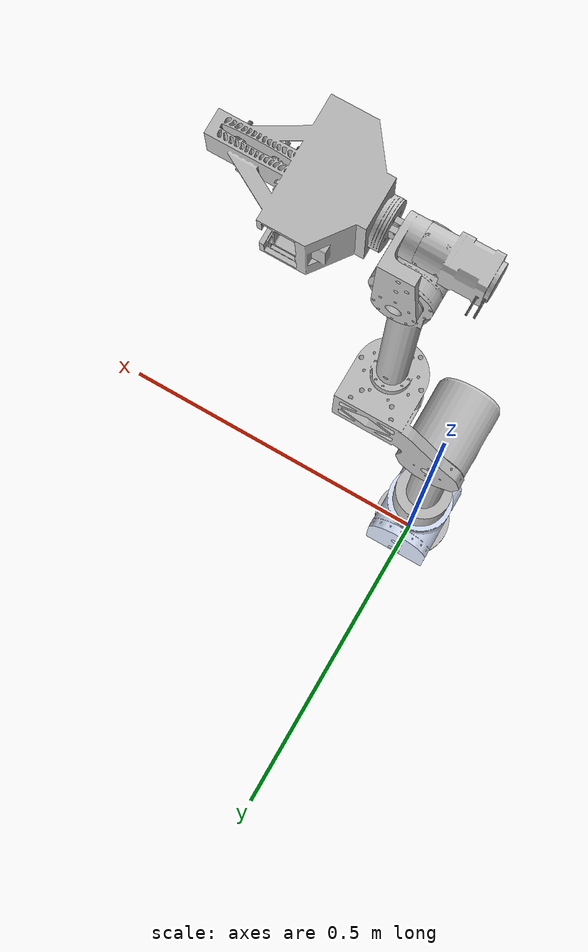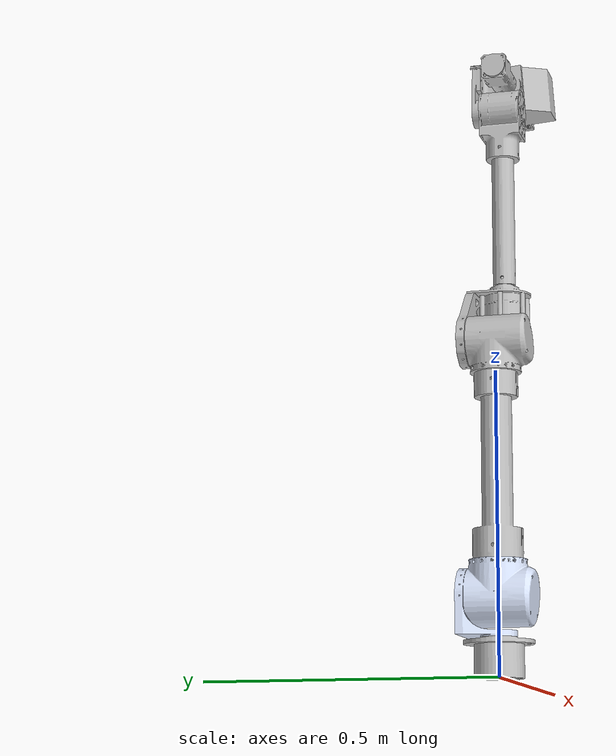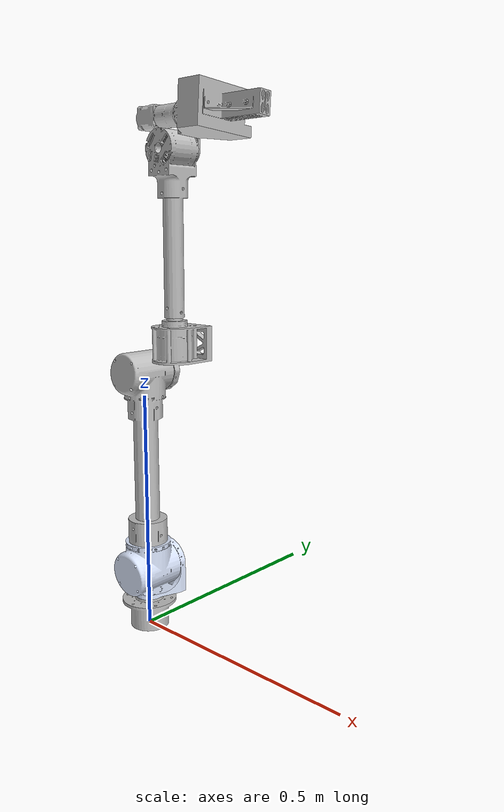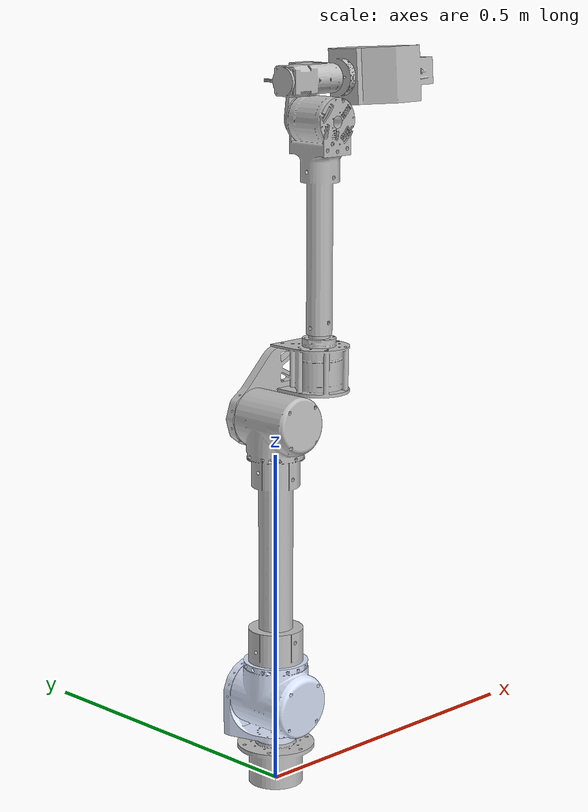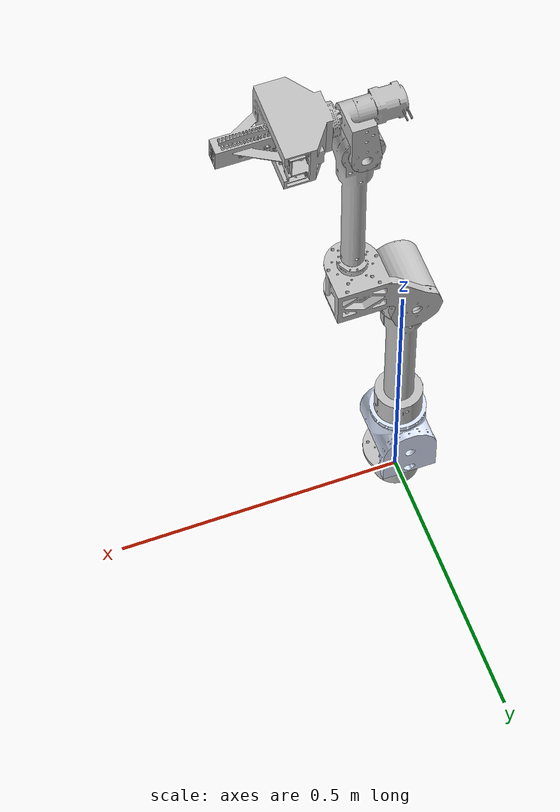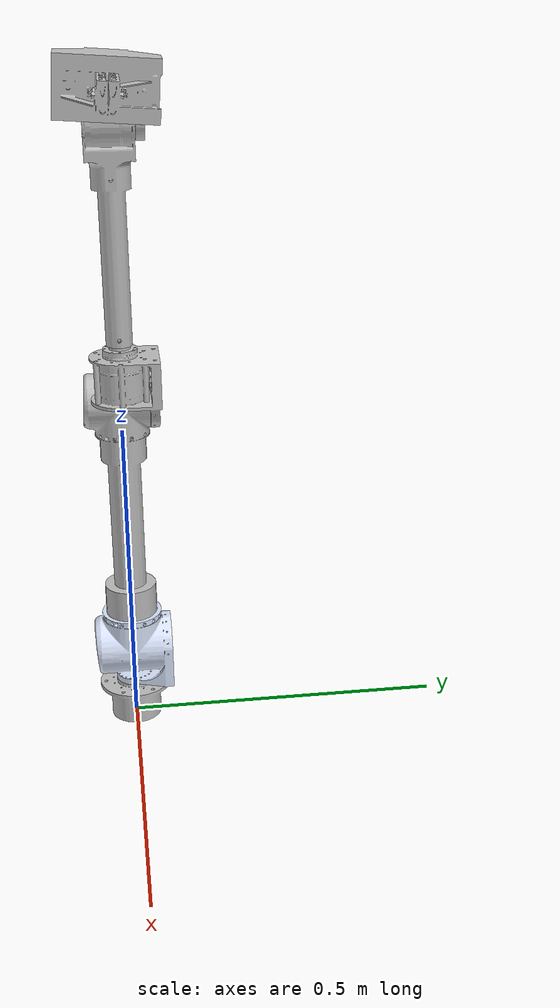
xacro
<?xml version="1.0"?>
<robot xmlns:xacro="http://www.ros.org/wiki/xacro" name="plex_arm_5">
    <xacro:arg name="initial_positions_file" default="initial_positions.yaml" />

    <!-- Import plex_arm_5 urdf file -->
    <xacro:include filename="$(find plex_arm_5)/urdf/plex_arm_5.xacro" />

    <!-- Import control_xacro -->
    <xacro:include filename="plex_arm_5.ros2_control.xacro" />

    <xacro:plex_arm_5_ros2_control name="FakeSystem" initial_positions_file="$(arg initial_positions_file)"/>

</robot>

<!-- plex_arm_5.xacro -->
<robot xmlns:xacro="http://www.ros.org/wiki/xacro" name="plex_arm_5">

  <!-- ================================================================
       Macros
       ================================================================ -->

  <xacro:macro name="arm_link" params="name mass com_xyz ixx ixy ixz iyy iyz izz color:='0.75294 0.75294 0.75294 1'">
    <link name="${name}">
      <inertial>
        <origin xyz="${com_xyz}" rpy="0 0 0" />
        <mass value="${mass}" />
        <inertia ixx="${ixx}" ixy="${ixy}" ixz="${ixz}" iyy="${iyy}" iyz="${iyz}" izz="${izz}" />
      </inertial>
      <visual>
        <origin xyz="0 0 0" rpy="0 0 0" />
        <geometry>
          <mesh filename="package://plex_arm_5/meshes/${name}.STL" />
        </geometry>
        <material name="">
          <color rgba="${color}" />
        </material>
      </visual>
      <collision>
        <origin xyz="0 0 0" rpy="0 0 0" />
        <geometry>
          <mesh filename="package://plex_arm_5/meshes/${name}.STL" />
        </geometry>
      </collision>
    </link>
  </xacro:macro>

  <xacro:macro name="arm_joint" params="name parent child origin_xyz axis_xyz type:=continuous">
    <joint name="${name}" type="${type}">
      <origin xyz="${origin_xyz}" rpy="0 0 0" />
      <parent link="${parent}" />
      <child link="${child}" />
      <axis xyz="${axis_xyz}" />
    </joint>
  </xacro:macro>

  <!-- ================================================================
       Links
       ================================================================ -->

  <xacro:arm_link
    name="base_link"
    mass="0.39916"
    com_xyz="2.1342E-05 1.7312E-05 0.037561"
    ixx="0.00032484" ixy="2.4751E-08" ixz="2.1501E-07"
    iyy="0.00032522" iyz="2.018E-07" izz="0.00048667" />

  <xacro:arm_link
    name="link_2"
    mass="1.0133"
    com_xyz="-4.7496E-06 0.016265 0.055554"
    ixx="0.0014695" ixy="-2.7152E-07" ixz="-2.1886E-09"
    iyy="0.0014982" iyz="-0.00010509" izz="0.0013838"
    color="0.86667 0.9098 1 1" />

  <xacro:arm_link
    name="link_3"
    mass="1.3505"
    com_xyz="4.6264E-06 -0.056429 0.26786"
    ixx="0.0032253" ixy="2.6072E-07" ixz="-2.4663E-08"
    iyy="0.003211" iyz="-1.0067E-05" izz="0.0013126" />

  <xacro:arm_link
    name="link_4"
    mass="0.53981"
    com_xyz="0.080203 -0.03748 0.064231"
    ixx="0.00043584" ixy="6.5477E-07" ixz="-0.00011712"
    iyy="0.00066865" iyz="3.5007E-06" izz="0.00061192" />

  <xacro:arm_link
    name="link_5"
    mass="0.56411"
    com_xyz="0.00030394 0.00024838 0.25202"
    ixx="0.0011591" ixy="1.7103E-08" ixz="-1.8355E-06"
    iyy="0.0011689" iyz="5.1735E-07" izz="0.00028591" />

  <xacro:arm_link
    name="link_6"
    mass="0.20707"
    com_xyz="-0.019318 -0.020642 0.052559"
    ixx="7.1787E-05" ixy="3.075E-06" ixz="-1.223E-06"
    iyy="0.00015862" iyz="5.6476E-11" izz="0.00014095" />

  <xacro:arm_link
    name="EE_assembly"
    mass="0.55354"
    com_xyz="0.075691 0.0025698 -0.00023436"
    ixx="0.00065007" ixy="3.7444E-05" ixz="8.2603E-06"
    iyy="0.00045081" iyz="-4.5045E-07" izz="0.00077513" />

  <!-- ================================================================
       Joints
       ================================================================ -->

  <xacro:arm_joint
    name="joint_1"
    parent="base_link" child="link_2"
    origin_xyz="0 0 0.064"
    axis_xyz="0 0 1" />

  <xacro:arm_joint
    name="joint_2"
    parent="link_2" child="link_3"
    origin_xyz="0 0.0585 0.0632"
    axis_xyz="0 1 0" />

  <xacro:arm_joint
    name="joint_3"
    parent="link_3" child="link_4"
    origin_xyz="0 -0.006 0.4238"
    axis_xyz="0 -1 0" />

  <xacro:arm_joint
    name="joint_4"
    parent="link_4" child="link_5"
    origin_xyz="0.090416 -0.051 0.10538"
    axis_xyz="0.0011909 0 1" />

  <xacro:arm_joint
    name="joint_5"
    parent="link_5" child="link_6"
    origin_xyz="0.00038195 0.0312 0.32073"
    axis_xyz="0 1 0" />

  <xacro:arm_joint
    name="joint_6"
    parent="link_6" child="EE_assembly"
    origin_xyz="0.021875 -0.0313 0.059"
    axis_xyz="1 0 0" />

</robot>
